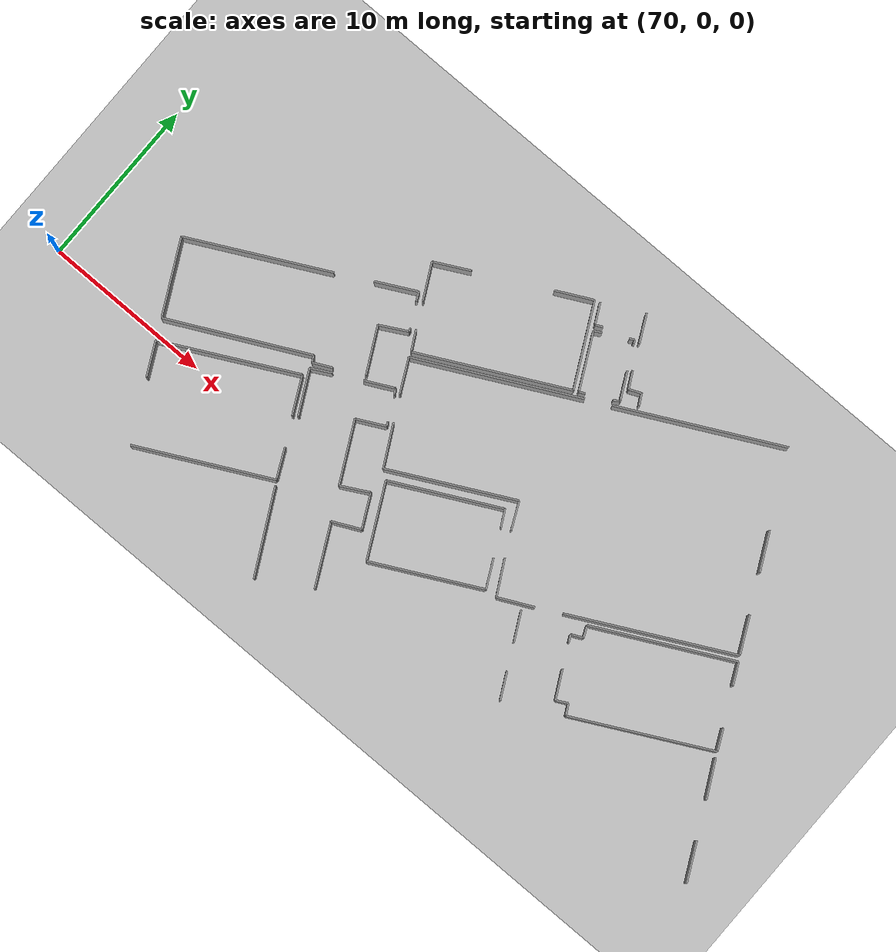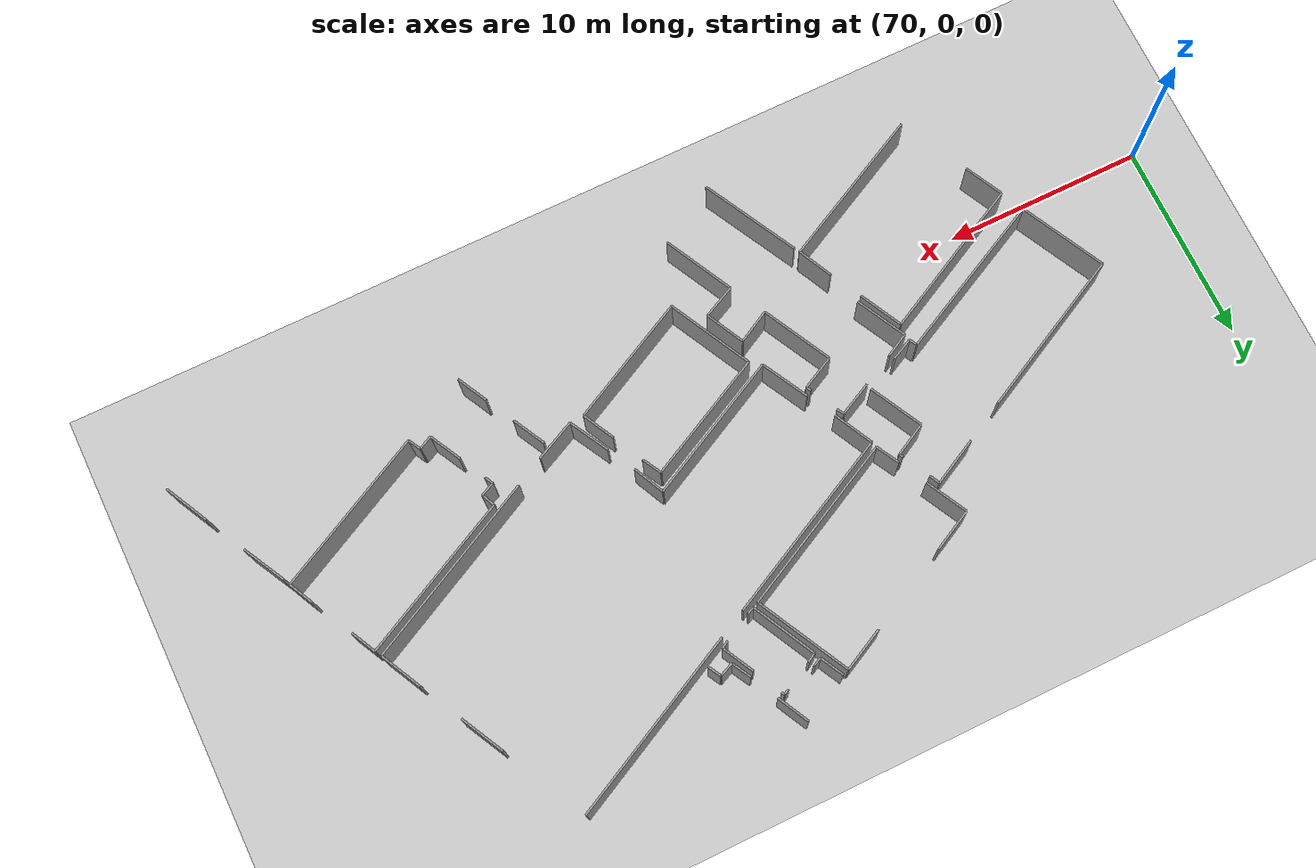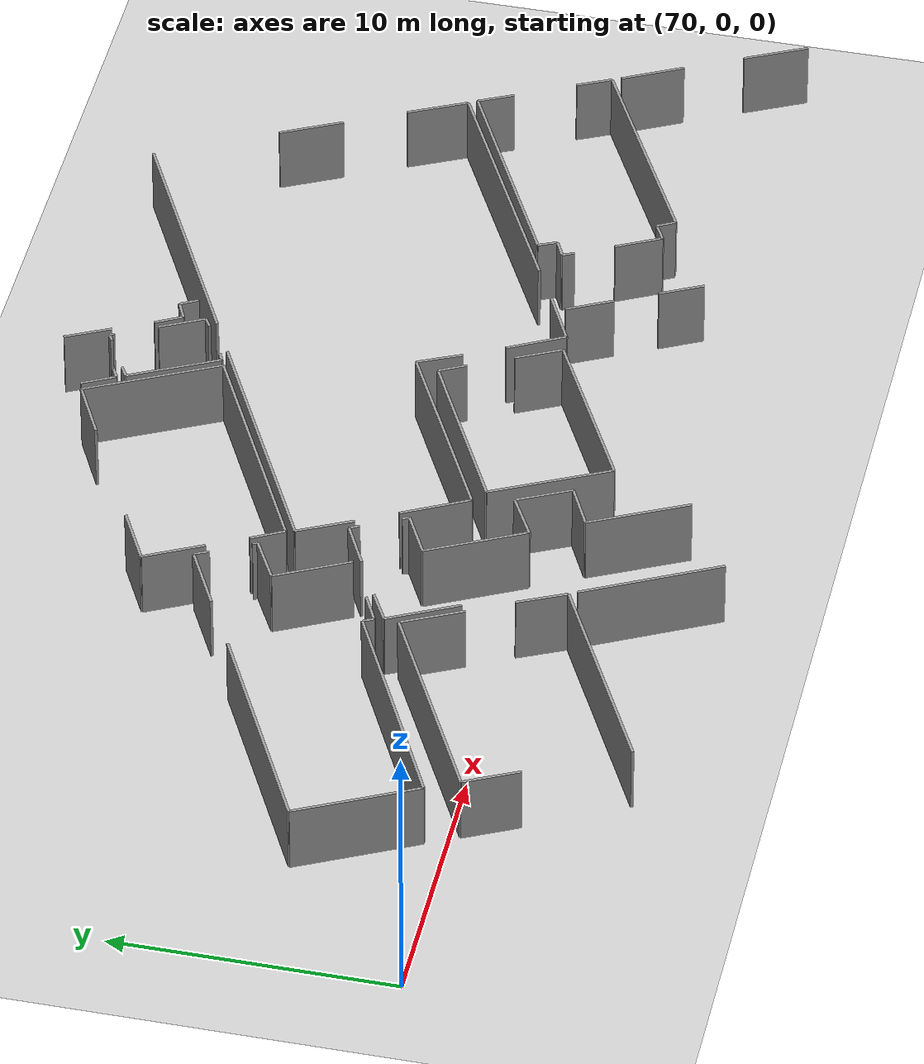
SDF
<sdf version="1.6">
 <world name="default">
  <model name="ground_plane">
   <static>1</static>
   <link name="link">
    <collision name="collision">
     <geometry><plane><normal>0 0 1</normal><size>100 100</size></plane></geometry>
     <surface><friction><ode><mu>100</mu><mu2>50</mu2></ode></friction></surface>
    </collision>
    <visual name="visual">
     <cast_shadows>0</cast_shadows>
     <geometry><plane><normal>0 0 1</normal><size>100 100</size></plane></geometry>
     <material>
      <script><uri>file://media/materials/scripts/gazebo.material</uri><name>Gazebo/Grey</name></script>
     </material>
    </visual>
   </link>
  </model>
  <model name="0510045922_A-40">
   <static>1</static>
   <link name="Wall_787">
    <collision name="Wall_787_Collision">
     <geometry><box><size>0.702674339037 0.1 2.5</size></box></geometry>
     <pose>0.351337169518 0 1.25 0 0 0</pose>
    </collision>
    <visual name="Wall_787_Visual">
     <pose>0.351337169518 0 1.25 0 0 0</pose>
     <geometry><box><size>0.702674339037 0.1 2.5</size></box></geometry>
     <material>
      <script><uri>file://media/materials/scripts/gazebo.material</uri><name>Gazebo/Grey</name></script>
      <ambient>1 1 1 1</ambient>
     </material>
    </visual>
    <pose>234.083802504 -87.1699561543 0 0 0 2.06858411328</pose>
   </link>
   <link name="Wall_788">
    <collision name="Wall_788_Collision">
     <geometry><box><size>0.744508470531 0.1 2.5</size></box></geometry>
     <pose>0.372254235266 0 1.25 0 0 0</pose>
    </collision>
    <visual name="Wall_788_Visual">
     <pose>0.372254235266 0 1.25 0 0 0</pose>
     <geometry><box><size>0.744508470531 0.1 2.5</size></box></geometry>
     <material>
      <script><uri>file://media/materials/scripts/gazebo.material</uri><name>Gazebo/Grey</name></script>
      <ambient>1 1 1 1</ambient>
     </material>
    </visual>
    <pose>233.748287475 -86.5525576666 0 0 0 -2.7262108011</pose>
   </link>
   <link name="Wall_789">
    <collision name="Wall_789_Collision">
     <geometry><box><size>1.05854612528 0.1 2.5</size></box></geometry>
     <pose>0.52927306264 0 1.25 0 0 0</pose>
    </collision>
    <visual name="Wall_789_Visual">
     <pose>0.52927306264 0 1.25 0 0 0</pose>
     <geometry><box><size>1.05854612528 0.1 2.5</size></box></geometry>
     <material>
      <script><uri>file://media/materials/scripts/gazebo.material</uri><name>Gazebo/Grey</name></script>
      <ambient>1 1 1 1</ambient>
     </material>
    </visual>
    <pose>233.067090297 -86.8529961238 0 0 0 2.06816919032</pose>
   </link>
   <link name="Wall_790">
    <collision name="Wall_790_Collision">
     <geometry><box><size>1.72203530952 0.1 2.5</size></box></geometry>
     <pose>0.861017654759 0 1.25 0 0 0</pose>
    </collision>
    <visual name="Wall_790_Visual">
     <pose>0.861017654759 0 1.25 0 0 0</pose>
     <geometry><box><size>1.72203530952 0.1 2.5</size></box></geometry>
     <material>
      <script><uri>file://media/materials/scripts/gazebo.material</uri><name>Gazebo/Grey</name></script>
      <ambient>1 1 1 1</ambient>
     </material>
    </visual>
    <pose>231.89253352 -84.5549723581 0 0 0 2.03926269842</pose>
   </link>
   <link name="Wall_794">
    <collision name="Wall_794_Collision">
     <geometry><box><size>0.455379895638 0.1 2.5</size></box></geometry>
     <pose>0.227689947819 0 1.25 0 0 0</pose>
    </collision>
    <visual name="Wall_794_Visual">
     <pose>0.227689947819 0 1.25 0 0 0</pose>
     <geometry><box><size>0.455379895638 0.1 2.5</size></box></geometry>
     <material>
      <script><uri>file://media/materials/scripts/gazebo.material</uri><name>Gazebo/Grey</name></script>
      <ambient>1 1 1 1</ambient>
     </material>
    </visual>
    <pose>229.790481032 -85.1423778357 0 0 0 -2.67120525648</pose>
   </link>
   <link name="Wall_795">
    <collision name="Wall_795_Collision">
     <geometry><box><size>1.28089379356 0.1 2.5</size></box></geometry>
     <pose>0.640446896781 0 1.25 0 0 0</pose>
    </collision>
    <visual name="Wall_795_Visual">
     <pose>0.640446896781 0 1.25 0 0 0</pose>
     <geometry><box><size>1.28089379356 0.1 2.5</size></box></geometry>
     <material>
      <script><uri>file://media/materials/scripts/gazebo.material</uri><name>Gazebo/Grey</name></script>
      <ambient>1 1 1 1</ambient>
     </material>
    </visual>
    <pose>229.384558683 -85.3487704137 0 0 0 2.04988603832</pose>
   </link>
   <link name="Wall_796">
    <collision name="Wall_796_Collision">
     <geometry><box><size>3.43554262867 0.1 2.5</size></box></geometry>
     <pose>1.71777131433 0 1.25 0 0 0</pose>
    </collision>
    <visual name="Wall_796_Visual">
     <pose>1.71777131433 0 1.25 0 0 0</pose>
     <geometry><box><size>3.43554262867 0.1 2.5</size></box></geometry>
     <material>
      <script><uri>file://media/materials/scripts/gazebo.material</uri><name>Gazebo/Grey</name></script>
      <ambient>1 1 1 1</ambient>
     </material>
    </visual>
    <pose>231.07585944 -88.7140878185 0 0 0 2.03910922306</pose>
   </link>
   <link name="Wall_797">
    <collision name="Wall_797_Collision">
     <geometry><box><size>0.488071964236 0.1 2.5</size></box></geometry>
     <pose>0.244035982118 0 1.25 0 0 0</pose>
    </collision>
    <visual name="Wall_797_Visual">
     <pose>0.244035982118 0 1.25 0 0 0</pose>
     <geometry><box><size>0.488071964236 0.1 2.5</size></box></geometry>
     <material>
      <script><uri>file://media/materials/scripts/gazebo.material</uri><name>Gazebo/Grey</name></script>
      <ambient>1 1 1 1</ambient>
     </material>
    </visual>
    <pose>229.525119146 -85.6484463367 0 0 0 0.515141226415</pose>
   </link>
   <link name="Wall_798">
    <collision name="Wall_798_Collision">
     <geometry><box><size>0.283112021477 0.1 2.5</size></box></geometry>
     <pose>0.141556010739 0 1.25 0 0 0</pose>
    </collision>
    <visual name="Wall_798_Visual">
     <pose>0.141556010739 0 1.25 0 0 0</pose>
     <geometry><box><size>0.283112021477 0.1 2.5</size></box></geometry>
     <material>
      <script><uri>file://media/materials/scripts/gazebo.material</uri><name>Gazebo/Grey</name></script>
      <ambient>1 1 1 1</ambient>
     </material>
    </visual>
    <pose>231.298265235 -84.7041748745 0 0 0 0.485732371197</pose>
   </link>
   <link name="Wall_799">
    <collision name="Wall_799_Collision">
     <geometry><box><size>0.16725611109 0.1 2.5</size></box></geometry>
     <pose>0.0836280555448 0 1.25 0 0 0</pose>
    </collision>
    <visual name="Wall_799_Visual">
     <pose>0.0836280555448 0 1.25 0 0 0</pose>
     <geometry><box><size>0.16725611109 0.1 2.5</size></box></geometry>
     <material>
      <script><uri>file://media/materials/scripts/gazebo.material</uri><name>Gazebo/Grey</name></script>
      <ambient>1 1 1 1</ambient>
     </material>
    </visual>
    <pose>231.548630616 -84.5720022876 0 0 0 -0.936413506319</pose>
   </link>
   <link name="Wall_800">
    <collision name="Wall_800_Collision">
     <geometry><box><size>1.72026101765 0.1 2.5</size></box></geometry>
     <pose>0.860130508825 0 1.25 0 0 0</pose>
    </collision>
    <visual name="Wall_800_Visual">
     <pose>0.860130508825 0 1.25 0 0 0</pose>
     <geometry><box><size>1.72026101765 0.1 2.5</size></box></geometry>
     <material>
      <script><uri>file://media/materials/scripts/gazebo.material</uri><name>Gazebo/Grey</name></script>
      <ambient>1 1 1 1</ambient>
     </material>
    </visual>
    <pose>232.350562369 -86.1186757324 0 0 0 -1.09849235568</pose>
   </link>
   <link name="Wall_801">
    <collision name="Wall_801_Collision">
     <geometry><box><size>0.405953622283 0.1 2.5</size></box></geometry>
     <pose>0.202976811141 0 1.25 0 0 0</pose>
    </collision>
    <visual name="Wall_801_Visual">
     <pose>0.202976811141 0 1.25 0 0 0</pose>
     <geometry><box><size>0.405953622283 0.1 2.5</size></box></geometry>
     <material>
      <script><uri>file://media/materials/scripts/gazebo.material</uri><name>Gazebo/Grey</name></script>
      <ambient>1 1 1 1</ambient>
     </material>
    </visual>
    <pose>233.13317659 -87.6506068501 0 0 0 -2.58850201021</pose>
   </link>
   <link name="Wall_802">
    <collision name="Wall_802_Collision">
     <geometry><box><size>0.370799346561 0.1 2.5</size></box></geometry>
     <pose>0.185399673281 0 1.25 0 0 0</pose>
    </collision>
    <visual name="Wall_802_Visual">
     <pose>0.185399673281 0 1.25 0 0 0</pose>
     <geometry><box><size>0.370799346561 0.1 2.5</size></box></geometry>
     <material>
      <script><uri>file://media/materials/scripts/gazebo.material</uri><name>Gazebo/Grey</name></script>
      <ambient>1 1 1 1</ambient>
     </material>
    </visual>
    <pose>231.416966385 -88.5686979729 0 0 0 -2.73868106274</pose>
   </link>
   <link name="Wall_803">
    <collision name="Wall_803_Collision">
     <geometry><box><size>2.2335447484 0.1 2.5</size></box></geometry>
     <pose>1.1167723742 0 1.25 0 0 0</pose>
    </collision>
    <visual name="Wall_803_Visual">
     <pose>1.1167723742 0 1.25 0 0 0</pose>
     <geometry><box><size>2.2335447484 0.1 2.5</size></box></geometry>
     <material>
      <script><uri>file://media/materials/scripts/gazebo.material</uri><name>Gazebo/Grey</name></script>
      <ambient>1 1 1 1</ambient>
     </material>
    </visual>
    <pose>220.331499015 -88.475668806 0 0 0 0.478101735422</pose>
   </link>
   <link name="Wall_804">
    <collision name="Wall_804_Collision">
     <geometry><box><size>2.28574592998 0.1 2.5</size></box></geometry>
     <pose>1.14287296499 0 1.25 0 0 0</pose>
    </collision>
    <visual name="Wall_804_Visual">
     <pose>1.14287296499 0 1.25 0 0 0</pose>
     <geometry><box><size>2.28574592998 0.1 2.5</size></box></geometry>
     <material>
      <script><uri>file://media/materials/scripts/gazebo.material</uri><name>Gazebo/Grey</name></script>
      <ambient>1 1 1 1</ambient>
     </material>
    </visual>
    <pose>226.447277118 -85.3528372625 0 0 0 0.468919093889</pose>
   </link>
   <link name="Wall_805">
    <collision name="Wall_805_Collision">
     <geometry><box><size>5.08370079239 0.1 2.5</size></box></geometry>
     <pose>2.54185039619 0 1.25 0 0 0</pose>
    </collision>
    <visual name="Wall_805_Visual">
     <pose>2.54185039619 0 1.25 0 0 0</pose>
     <geometry><box><size>5.08370079239 0.1 2.5</size></box></geometry>
     <material>
      <script><uri>file://media/materials/scripts/gazebo.material</uri><name>Gazebo/Grey</name></script>
      <ambient>1 1 1 1</ambient>
     </material>
    </visual>
    <pose>228.486293449 -84.3198576603 0 0 0 -1.09871887343</pose>
   </link>
   <link name="Wall_806">
    <collision name="Wall_806_Collision">
     <geometry><box><size>9.12116291079 0.1 2.5</size></box></geometry>
     <pose>4.56058145539 0 1.25 0 0 0</pose>
    </collision>
    <visual name="Wall_806_Visual">
     <pose>4.56058145539 0 1.25 0 0 0</pose>
     <geometry><box><size>9.12116291079 0.1 2.5</size></box></geometry>
     <material>
      <script><uri>file://media/materials/scripts/gazebo.material</uri><name>Gazebo/Grey</name></script>
      <ambient>1 1 1 1</ambient>
     </material>
    </visual>
    <pose>230.798042829 -88.8475312957 0 0 0 -2.67061706848</pose>
   </link>
   <link name="Wall_807">
    <collision name="Wall_807_Collision">
     <geometry><box><size>1.27514228015 0.1 2.5</size></box></geometry>
     <pose>0.637571140075 0 1.25 0 0 0</pose>
    </collision>
    <visual name="Wall_807_Visual">
     <pose>0.637571140075 0 1.25 0 0 0</pose>
     <geometry><box><size>1.27514228015 0.1 2.5</size></box></geometry>
     <material>
      <script><uri>file://media/materials/scripts/gazebo.material</uri><name>Gazebo/Grey</name></script>
      <ambient>1 1 1 1</ambient>
     </material>
    </visual>
    <pose>222.669937091 -92.9863125119 0 0 0 2.06645226519</pose>
   </link>
   <link name="Wall_808">
    <collision name="Wall_808_Collision">
     <geometry><box><size>2.25785678041 0.1 2.5</size></box></geometry>
     <pose>1.12892839021 0 1.25 0 0 0</pose>
    </collision>
    <visual name="Wall_808_Visual">
     <pose>1.12892839021 0 1.25 0 0 0</pose>
     <geometry><box><size>2.25785678041 0.1 2.5</size></box></geometry>
     <material>
      <script><uri>file://media/materials/scripts/gazebo.material</uri><name>Gazebo/Grey</name></script>
      <ambient>1 1 1 1</ambient>
     </material>
    </visual>
    <pose>221.369308 -90.4808794561 0 0 0 2.04838996277</pose>
   </link>
   <link name="Wall_809">
    <collision name="Wall_809_Collision">
     <geometry><box><size>6.69150289849 0.1 2.5</size></box></geometry>
     <pose>3.34575144925 0 1.25 0 0 0</pose>
    </collision>
    <visual name="Wall_809_Visual">
     <pose>3.34575144925 0 1.25 0 0 0</pose>
     <geometry><box><size>6.69150289849 0.1 2.5</size></box></geometry>
     <material>
      <script><uri>file://media/materials/scripts/gazebo.material</uri><name>Gazebo/Grey</name></script>
      <ambient>1 1 1 1</ambient>
     </material>
    </visual>
    <pose>226.17174811 -99.2439219673 0 0 0 0.468947732646</pose>
   </link>
   <link name="Wall_810">
    <collision name="Wall_810_Collision">
     <geometry><box><size>1.04712513145 0.1 2.5</size></box></geometry>
     <pose>0.523562565726 0 1.25 0 0 0</pose>
    </collision>
    <visual name="Wall_810_Visual">
     <pose>0.523562565726 0 1.25 0 0 0</pose>
     <geometry><box><size>1.04712513145 0.1 2.5</size></box></geometry>
     <material>
      <script><uri>file://media/materials/scripts/gazebo.material</uri><name>Gazebo/Grey</name></script>
      <ambient>1 1 1 1</ambient>
     </material>
    </visual>
    <pose>232.140865476 -96.2197115079 0 0 0 -1.08239538618</pose>
   </link>
   <link name="Wall_811">
    <collision name="Wall_811_Collision">
     <geometry><box><size>1.75693164649 0.1 2.5</size></box></geometry>
     <pose>0.878465823244 0 1.25 0 0 0</pose>
    </collision>
    <visual name="Wall_811_Visual">
     <pose>0.878465823244 0 1.25 0 0 0</pose>
     <geometry><box><size>1.75693164649 0.1 2.5</size></box></geometry>
     <material>
      <script><uri>file://media/materials/scripts/gazebo.material</uri><name>Gazebo/Grey</name></script>
      <ambient>1 1 1 1</ambient>
     </material>
    </visual>
    <pose>233.402605325 -98.6783758022 0 0 0 -1.1024903664</pose>
   </link>
   <link name="Wall_812">
    <collision name="Wall_812_Collision">
     <geometry><box><size>6.70381855662 0.1 2.5</size></box></geometry>
     <pose>3.35190927831 0 1.25 0 0 0</pose>
    </collision>
    <visual name="Wall_812_Visual">
     <pose>3.35190927831 0 1.25 0 0 0</pose>
     <geometry><box><size>6.70381855662 0.1 2.5</size></box></geometry>
     <material>
      <script><uri>file://media/materials/scripts/gazebo.material</uri><name>Gazebo/Grey</name></script>
      <ambient>1 1 1 1</ambient>
     </material>
    </visual>
    <pose>234.195640846 -100.246146025 0 0 0 -2.66936505742</pose>
   </link>
   <link name="Wall_813">
    <collision name="Wall_813_Collision">
     <geometry><box><size>4.54239718096 0.1 2.5</size></box></geometry>
     <pose>2.27119859048 0 1.25 0 0 0</pose>
    </collision>
    <visual name="Wall_813_Visual">
     <pose>2.27119859048 0 1.25 0 0 0</pose>
     <geometry><box><size>4.54239718096 0.1 2.5</size></box></geometry>
     <material>
      <script><uri>file://media/materials/scripts/gazebo.material</uri><name>Gazebo/Grey</name></script>
      <ambient>1 1 1 1</ambient>
     </material>
    </visual>
    <pose>228.225506767 -103.295520112 0 0 0 2.03994938568</pose>
   </link>
   <link name="Wall_814">
    <collision name="Wall_814_Collision">
     <geometry><box><size>9.89118729585 0.1 2.5</size></box></geometry>
     <pose>4.94559364793 0 1.25 0 0 0</pose>
    </collision>
    <visual name="Wall_814_Visual">
     <pose>4.94559364793 0 1.25 0 0 0</pose>
     <geometry><box><size>9.89118729585 0.1 2.5</size></box></geometry>
     <material>
      <script><uri>file://media/materials/scripts/gazebo.material</uri><name>Gazebo/Grey</name></script>
      <ambient>1 1 1 1</ambient>
     </material>
    </visual>
    <pose>222.755340916 -93.286242613 0 0 0 0.470841812167</pose>
   </link>
   <link name="Wall_815">
    <collision name="Wall_815_Collision">
     <geometry><box><size>9.91545709278 0.1 2.5</size></box></geometry>
     <pose>4.95772854639 0 1.25 0 0 0</pose>
    </collision>
    <visual name="Wall_815_Visual">
     <pose>4.95772854639 0 1.25 0 0 0</pose>
     <geometry><box><size>9.91545709278 0.1 2.5</size></box></geometry>
     <material>
      <script><uri>file://media/materials/scripts/gazebo.material</uri><name>Gazebo/Grey</name></script>
      <ambient>1 1 1 1</ambient>
     </material>
    </visual>
    <pose>232.952710173 -88.1032979602 0 0 0 0.469998768058</pose>
   </link>
   <link name="Wall_817">
    <collision name="Wall_817_Collision">
     <geometry><box><size>2.38762344668 0.1 2.5</size></box></geometry>
     <pose>1.19381172334 0 1.25 0 0 0</pose>
    </collision>
    <visual name="Wall_817_Visual">
     <pose>1.19381172334 0 1.25 0 0 0</pose>
     <geometry><box><size>2.38762344668 0.1 2.5</size></box></geometry>
     <material>
      <script><uri>file://media/materials/scripts/gazebo.material</uri><name>Gazebo/Grey</name></script>
      <ambient>1 1 1 1</ambient>
     </material>
    </visual>
    <pose>243.915409544 -87.7515155366 0 0 0 -1.10010255751</pose>
   </link>
   <link name="Wall_818">
    <collision name="Wall_818_Collision">
     <geometry><box><size>2.28548904373 0.1 2.5</size></box></geometry>
     <pose>1.14274452186 0 1.25 0 0 0</pose>
    </collision>
    <visual name="Wall_818_Visual">
     <pose>1.14274452186 0 1.25 0 0 0</pose>
     <geometry><box><size>2.28548904373 0.1 2.5</size></box></geometry>
     <material>
      <script><uri>file://media/materials/scripts/gazebo.material</uri><name>Gazebo/Grey</name></script>
      <ambient>1 1 1 1</ambient>
     </material>
    </visual>
    <pose>246.060672301 -91.9810383173 0 0 0 -1.10854133601</pose>
   </link>
   <link name="Wall_819">
    <collision name="Wall_819_Collision">
     <geometry><box><size>9.89638124721 0.1 2.5</size></box></geometry>
     <pose>4.94819062361 0 1.25 0 0 0</pose>
    </collision>
    <visual name="Wall_819_Visual">
     <pose>4.94819062361 0 1.25 0 0 0</pose>
     <geometry><box><size>9.89638124721 0.1 2.5</size></box></geometry>
     <material>
      <script><uri>file://media/materials/scripts/gazebo.material</uri><name>Gazebo/Grey</name></script>
      <ambient>1 1 1 1</ambient>
     </material>
    </visual>
    <pose>247.079926288 -94.0266632776 0 0 0 -2.66972082789</pose>
   </link>
   <link name="Wall_820">
    <collision name="Wall_820_Collision">
     <geometry><box><size>2.17733418956 0.1 2.5</size></box></geometry>
     <pose>1.08866709478 0 1.25 0 0 0</pose>
    </collision>
    <visual name="Wall_820_Visual">
     <pose>1.08866709478 0 1.25 0 0 0</pose>
     <geometry><box><size>2.17733418956 0.1 2.5</size></box></geometry>
     <material>
      <script><uri>file://media/materials/scripts/gazebo.material</uri><name>Gazebo/Grey</name></script>
      <ambient>1 1 1 1</ambient>
     </material>
    </visual>
    <pose>236.86705217 -99.257139226 0 0 0 -2.69068387408</pose>
   </link>
   <link name="Wall_821">
    <collision name="Wall_821_Collision">
     <geometry><box><size>2.1959600944 0.1 2.5</size></box></geometry>
     <pose>1.0979800472 0 1.25 0 0 0</pose>
    </collision>
    <visual name="Wall_821_Visual">
     <pose>1.0979800472 0 1.25 0 0 0</pose>
     <geometry><box><size>2.1959600944 0.1 2.5</size></box></geometry>
     <material>
      <script><uri>file://media/materials/scripts/gazebo.material</uri><name>Gazebo/Grey</name></script>
      <ambient>1 1 1 1</ambient>
     </material>
    </visual>
    <pose>234.907339391 -100.205985893 0 0 0 2.06395375106</pose>
   </link>
   <link name="Wall_822">
    <collision name="Wall_822_Collision">
     <geometry><box><size>1.67993368068 0.1 2.5</size></box></geometry>
     <pose>0.839966840342 0 1.25 0 0 0</pose>
    </collision>
    <visual name="Wall_822_Visual">
     <pose>0.839966840342 0 1.25 0 0 0</pose>
     <geometry><box><size>1.67993368068 0.1 2.5</size></box></geometry>
     <material>
      <script><uri>file://media/materials/scripts/gazebo.material</uri><name>Gazebo/Grey</name></script>
      <ambient>1 1 1 1</ambient>
     </material>
    </visual>
    <pose>233.158594395 -96.893283345 0 0 0 2.0117743851</pose>
   </link>
   <link name="Wall_823">
    <collision name="Wall_823_Collision">
     <geometry><box><size>7.63311057916 0.1 2.5</size></box></geometry>
     <pose>3.81655528958 0 1.25 0 0 0</pose>
    </collision>
    <visual name="Wall_823_Visual">
     <pose>3.81655528958 0 1.25 0 0 0</pose>
     <geometry><box><size>7.63311057916 0.1 2.5</size></box></geometry>
     <material>
      <script><uri>file://media/materials/scripts/gazebo.material</uri><name>Gazebo/Grey</name></script>
      <ambient>1 1 1 1</ambient>
     </material>
    </visual>
    <pose>232.441558111 -95.3740611298 0 0 0 -2.66951610261</pose>
   </link>
   <link name="Wall_824">
    <collision name="Wall_824_Collision">
     <geometry><box><size>2.57103164901 0.1 2.5</size></box></geometry>
     <pose>1.28551582451 0 1.25 0 0 0</pose>
    </collision>
    <visual name="Wall_824_Visual">
     <pose>1.28551582451 0 1.25 0 0 0</pose>
     <geometry><box><size>2.57103164901 0.1 2.5</size></box></geometry>
     <material>
      <script><uri>file://media/materials/scripts/gazebo.material</uri><name>Gazebo/Grey</name></script>
      <ambient>1 1 1 1</ambient>
     </material>
    </visual>
    <pose>225.64331194 -98.8451166042 0 0 0 2.05549066618</pose>
   </link>
   <link name="Wall_825">
    <collision name="Wall_825_Collision">
     <geometry><box><size>2.11612398118 0.1 2.5</size></box></geometry>
     <pose>1.05806199059 0 1.25 0 0 0</pose>
    </collision>
    <visual name="Wall_825_Visual">
     <pose>1.05806199059 0 1.25 0 0 0</pose>
     <geometry><box><size>2.11612398118 0.1 2.5</size></box></geometry>
     <material>
      <script><uri>file://media/materials/scripts/gazebo.material</uri><name>Gazebo/Grey</name></script>
      <ambient>1 1 1 1</ambient>
     </material>
    </visual>
    <pose>223.706983542 -95.1763106056 0 0 0 2.03723722462</pose>
   </link>
   <link name="Wall_826">
    <collision name="Wall_826_Collision">
     <geometry><box><size>4.59194956785 0.1 2.5</size></box></geometry>
     <pose>2.29597478393 0 1.25 0 0 0</pose>
    </collision>
    <visual name="Wall_826_Visual">
     <pose>2.29597478393 0 1.25 0 0 0</pose>
     <geometry><box><size>4.59194956785 0.1 2.5</size></box></geometry>
     <material>
      <script><uri>file://media/materials/scripts/gazebo.material</uri><name>Gazebo/Grey</name></script>
      <ambient>1 1 1 1</ambient>
     </material>
    </visual>
    <pose>211.051204169 -100.410090869 0 0 0 2.03956816067</pose>
   </link>
   <link name="Wall_827">
    <collision name="Wall_827_Collision">
     <geometry><box><size>8.59559756146 0.1 2.5</size></box></geometry>
     <pose>4.29779878073 0 1.25 0 0 0</pose>
    </collision>
    <visual name="Wall_827_Visual">
     <pose>4.29779878073 0 1.25 0 0 0</pose>
     <geometry><box><size>8.59559756146 0.1 2.5</size></box></geometry>
     <material>
      <script><uri>file://media/materials/scripts/gazebo.material</uri><name>Gazebo/Grey</name></script>
      <ambient>1 1 1 1</ambient>
     </material>
    </visual>
    <pose>208.97660291 -96.313503209 0 0 0 0.471979096445</pose>
   </link>
   <link name="Wall_828">
    <collision name="Wall_828_Collision">
     <geometry><box><size>2.52065626287 0.1 2.5</size></box></geometry>
     <pose>1.26032813144 0 1.25 0 0 0</pose>
    </collision>
    <visual name="Wall_828_Visual">
     <pose>1.26032813144 0 1.25 0 0 0</pose>
     <geometry><box><size>2.52065626287 0.1 2.5</size></box></geometry>
     <material>
      <script><uri>file://media/materials/scripts/gazebo.material</uri><name>Gazebo/Grey</name></script>
      <ambient>1 1 1 1</ambient>
     </material>
    </visual>
    <pose>218.610459427 -91.3506767491 0 0 0 0.47654546408</pose>
   </link>
   <link name="Wall_829">
    <collision name="Wall_829_Collision">
     <geometry><box><size>0.550262842912 0.1 2.5</size></box></geometry>
     <pose>0.275131421456 0 1.25 0 0 0</pose>
    </collision>
    <visual name="Wall_829_Visual">
     <pose>0.275131421456 0 1.25 0 0 0</pose>
     <geometry><box><size>0.550262842912 0.1 2.5</size></box></geometry>
     <material>
      <script><uri>file://media/materials/scripts/gazebo.material</uri><name>Gazebo/Grey</name></script>
      <ambient>1 1 1 1</ambient>
     </material>
    </visual>
    <pose>220.850276419 -90.1944207918 0 0 0 -1.13442031809</pose>
   </link>
   <link name="Wall_830">
    <collision name="Wall_830_Collision">
     <geometry><box><size>0.197781558973 0.1 2.5</size></box></geometry>
     <pose>0.0988907794863 0 1.25 0 0 0</pose>
    </collision>
    <visual name="Wall_830_Visual">
     <pose>0.0988907794863 0 1.25 0 0 0</pose>
     <geometry><box><size>0.197781558973 0.1 2.5</size></box></geometry>
     <material>
      <script><uri>file://media/materials/scripts/gazebo.material</uri><name>Gazebo/Grey</name></script>
      <ambient>1 1 1 1</ambient>
     </material>
    </visual>
    <pose>221.789972676 -92.0224693398 0 0 0 -1.13991444538</pose>
   </link>
   <link name="Wall_831">
    <collision name="Wall_831_Collision">
     <geometry><box><size>1.76415413026 0.1 2.5</size></box></geometry>
     <pose>0.882077065132 0 1.25 0 0 0</pose>
    </collision>
    <visual name="Wall_831_Visual">
     <pose>0.882077065132 0 1.25 0 0 0</pose>
     <geometry><box><size>1.76415413026 0.1 2.5</size></box></geometry>
     <material>
      <script><uri>file://media/materials/scripts/gazebo.material</uri><name>Gazebo/Grey</name></script>
      <ambient>1 1 1 1</ambient>
     </material>
    </visual>
    <pose>221.872580543 -92.2021732223 0 0 0 -2.64643149937</pose>
   </link>
   <link name="Wall_832">
    <collision name="Wall_832_Collision">
     <geometry><box><size>2.86427566955 0.1 2.5</size></box></geometry>
     <pose>1.43213783478 0 1.25 0 0 0</pose>
    </collision>
    <visual name="Wall_832_Visual">
     <pose>1.43213783478 0 1.25 0 0 0</pose>
     <geometry><box><size>2.86427566955 0.1 2.5</size></box></geometry>
     <material>
      <script><uri>file://media/materials/scripts/gazebo.material</uri><name>Gazebo/Grey</name></script>
      <ambient>1 1 1 1</ambient>
     </material>
    </visual>
    <pose>220.320315181 -93.0404524369 0 0 0 -1.09536167837</pose>
   </link>
   <link name="Wall_833">
    <collision name="Wall_833_Collision">
     <geometry><box><size>1.16218891565 0.1 2.5</size></box></geometry>
     <pose>0.581094457823 0 1.25 0 0 0</pose>
    </collision>
    <visual name="Wall_833_Visual">
     <pose>0.581094457823 0 1.25 0 0 0</pose>
     <geometry><box><size>1.16218891565 0.1 2.5</size></box></geometry>
     <material>
      <script><uri>file://media/materials/scripts/gazebo.material</uri><name>Gazebo/Grey</name></script>
      <ambient>1 1 1 1</ambient>
     </material>
    </visual>
    <pose>219.961924128 -96.4250873737 0 0 0 -2.68156396463</pose>
   </link>
   <link name="Wall_834">
    <collision name="Wall_834_Collision">
     <geometry><box><size>0.410444038879 0.1 2.5</size></box></geometry>
     <pose>0.20522201944 0 1.25 0 0 0</pose>
    </collision>
    <visual name="Wall_834_Visual">
     <pose>0.20522201944 0 1.25 0 0 0</pose>
     <geometry><box><size>0.410444038879 0.1 2.5</size></box></geometry>
     <material>
      <script><uri>file://media/materials/scripts/gazebo.material</uri><name>Gazebo/Grey</name></script>
      <ambient>1 1 1 1</ambient>
     </material>
    </visual>
    <pose>218.92055665 -96.9410688187 0 0 0 2.05521657073</pose>
   </link>
   <link name="Wall_835">
    <collision name="Wall_835_Collision">
     <geometry><box><size>8.58143346308 0.1 2.5</size></box></geometry>
     <pose>4.29071673154 0 1.25 0 0 0</pose>
    </collision>
    <visual name="Wall_835_Visual">
     <pose>4.29071673154 0 1.25 0 0 0</pose>
     <geometry><box><size>8.58143346308 0.1 2.5</size></box></geometry>
     <material>
      <script><uri>file://media/materials/scripts/gazebo.material</uri><name>Gazebo/Grey</name></script>
      <ambient>1 1 1 1</ambient>
     </material>
    </visual>
    <pose>218.729414755 -96.5778483828 0 0 0 -2.67866034257</pose>
   </link>
   <link name="Wall_837">
    <collision name="Wall_837_Collision">
     <geometry><box><size>1.78347777056 0.1 2.5</size></box></geometry>
     <pose>0.891738885279 0 1.25 0 0 0</pose>
    </collision>
    <visual name="Wall_837_Visual">
     <pose>0.891738885279 0 1.25 0 0 0</pose>
     <geometry><box><size>1.78347777056 0.1 2.5</size></box></geometry>
     <material>
      <script><uri>file://media/materials/scripts/gazebo.material</uri><name>Gazebo/Grey</name></script>
      <ambient>1 1 1 1</ambient>
     </material>
    </visual>
    <pose>236.391739213 -99.8539492915 0 0 0 -1.09242515154</pose>
   </link>
   <link name="Wall_838">
    <collision name="Wall_838_Collision">
     <geometry><box><size>1.67584229257 0.1 2.5</size></box></geometry>
     <pose>0.837921146287 0 1.25 0 0 0</pose>
    </collision>
    <visual name="Wall_838_Visual">
     <pose>0.837921146287 0 1.25 0 0 0</pose>
     <geometry><box><size>1.67584229257 0.1 2.5</size></box></geometry>
     <material>
      <script><uri>file://media/materials/scripts/gazebo.material</uri><name>Gazebo/Grey</name></script>
      <ambient>1 1 1 1</ambient>
     </material>
    </visual>
    <pose>237.94985067 -102.888581051 0 0 0 -1.09670275398</pose>
   </link>
   <link name="Wall_842">
    <collision name="Wall_842_Collision">
     <geometry><box><size>8.49953954372 0.1 2.5</size></box></geometry>
     <pose>4.24976977186 0 1.25 0 0 0</pose>
    </collision>
    <visual name="Wall_842_Visual">
     <pose>4.24976977186 0 1.25 0 0 0</pose>
     <geometry><box><size>8.49953954372 0.1 2.5</size></box></geometry>
     <material>
      <script><uri>file://media/materials/scripts/gazebo.material</uri><name>Gazebo/Grey</name></script>
      <ambient>1 1 1 1</ambient>
     </material>
    </visual>
    <pose>239.670636081 -98.1634110695 0 0 0 0.467579541876</pose>
   </link>
   <link name="Wall_843">
    <collision name="Wall_843_Collision">
     <geometry><box><size>1.35565165117 0.1 2.5</size></box></geometry>
     <pose>0.677825825583 0 1.25 0 0 0</pose>
    </collision>
    <visual name="Wall_843_Visual">
     <pose>0.677825825583 0 1.25 0 0 0</pose>
     <geometry><box><size>1.35565165117 0.1 2.5</size></box></geometry>
     <material>
      <script><uri>file://media/materials/scripts/gazebo.material</uri><name>Gazebo/Grey</name></script>
      <ambient>1 1 1 1</ambient>
     </material>
    </visual>
    <pose>247.257850925 -94.3324394739 0 0 0 -1.1082387727</pose>
   </link>
   <link name="Wall_844">
    <collision name="Wall_844_Collision">
     <geometry><box><size>1.32772697793 0.1 2.5</size></box></geometry>
     <pose>0.663863488965 0 1.25 0 0 0</pose>
    </collision>
    <visual name="Wall_844_Visual">
     <pose>0.663863488965 0 1.25 0 0 0</pose>
     <geometry><box><size>1.32772697793 0.1 2.5</size></box></geometry>
     <material>
      <script><uri>file://media/materials/scripts/gazebo.material</uri><name>Gazebo/Grey</name></script>
      <ambient>1 1 1 1</ambient>
     </material>
    </visual>
    <pose>248.940509627 -97.6286204486 0 0 0 -1.11485404475</pose>
   </link>
   <link name="Wall_845">
    <collision name="Wall_845_Collision">
     <geometry><box><size>8.48133803428 0.1 2.5</size></box></geometry>
     <pose>4.24066901714 0 1.25 0 0 0</pose>
    </collision>
    <visual name="Wall_845_Visual">
     <pose>4.24066901714 0 1.25 0 0 0</pose>
     <geometry><box><size>8.48133803428 0.1 2.5</size></box></geometry>
     <material>
      <script><uri>file://media/materials/scripts/gazebo.material</uri><name>Gazebo/Grey</name></script>
      <ambient>1 1 1 1</ambient>
     </material>
    </visual>
    <pose>249.525119146 -98.8207155112 0 0 0 -2.66832183779</pose>
   </link>
   <link name="Wall_846">
    <collision name="Wall_846_Collision">
     <geometry><box><size>0.696324286835 0.1 2.5</size></box></geometry>
     <pose>0.348162143418 0 1.25 0 0 0</pose>
    </collision>
    <visual name="Wall_846_Visual">
     <pose>0.348162143418 0 1.25 0 0 0</pose>
     <geometry><box><size>0.696324286835 0.1 2.5</size></box></geometry>
     <material>
      <script><uri>file://media/materials/scripts/gazebo.material</uri><name>Gazebo/Grey</name></script>
      <ambient>1 1 1 1</ambient>
     </material>
    </visual>
    <pose>241.97603101 -102.6865095 0 0 0 2.06938560528</pose>
   </link>
   <link name="Wall_847">
    <collision name="Wall_847_Collision">
     <geometry><box><size>0.728680199258 0.1 2.5</size></box></geometry>
     <pose>0.364340099629 0 1.25 0 0 0</pose>
    </collision>
    <visual name="Wall_847_Visual">
     <pose>0.364340099629 0 1.25 0 0 0</pose>
     <geometry><box><size>0.728680199258 0.1 2.5</size></box></geometry>
     <material>
      <script><uri>file://media/materials/scripts/gazebo.material</uri><name>Gazebo/Grey</name></script>
      <ambient>1 1 1 1</ambient>
     </material>
    </visual>
    <pose>241.643057762 -102.074957107 0 0 0 -2.66702504185</pose>
   </link>
   <link name="Wall_848">
    <collision name="Wall_848_Collision">
     <geometry><box><size>1.75127661292 0.1 2.5</size></box></geometry>
     <pose>0.875638306462 0 1.25 0 0 0</pose>
    </collision>
    <visual name="Wall_848_Visual">
     <pose>0.875638306462 0 1.25 0 0 0</pose>
     <geometry><box><size>1.75127661292 0.1 2.5</size></box></geometry>
     <material>
      <script><uri>file://media/materials/scripts/gazebo.material</uri><name>Gazebo/Grey</name></script>
      <ambient>1 1 1 1</ambient>
     </material>
    </visual>
    <pose>240.99490373 -102.407930355 0 0 0 2.05216475006</pose>
   </link>
   <link name="Wall_849">
    <collision name="Wall_849_Collision">
     <geometry><box><size>0.449458672635 0.1 2.5</size></box></geometry>
     <pose>0.224729336318 0 1.25 0 0 0</pose>
    </collision>
    <visual name="Wall_849_Visual">
     <pose>0.224729336318 0 1.25 0 0 0</pose>
     <geometry><box><size>0.449458672635 0.1 2.5</size></box></geometry>
     <material>
      <script><uri>file://media/materials/scripts/gazebo.material</uri><name>Gazebo/Grey</name></script>
      <ambient>1 1 1 1</ambient>
     </material>
    </visual>
    <pose>239.513045689 -99.527330495 0 0 0 2.03393811894</pose>
   </link>
   <link name="Wall_850">
    <collision name="Wall_850_Collision">
     <geometry><box><size>0.721909564978 0.1 2.5</size></box></geometry>
     <pose>0.360954782489 0 1.25 0 0 0</pose>
    </collision>
    <visual name="Wall_850_Visual">
     <pose>0.360954782489 0 1.25 0 0 0</pose>
     <geometry><box><size>0.721909564978 0.1 2.5</size></box></geometry>
     <material>
      <script><uri>file://media/materials/scripts/gazebo.material</uri><name>Gazebo/Grey</name></script>
      <ambient>1 1 1 1</ambient>
     </material>
    </visual>
    <pose>239.312245028 -99.1252208172 0 0 0 0.439711403325</pose>
   </link>
   <link name="Wall_851">
    <collision name="Wall_851_Collision">
     <geometry><box><size>0.717855024863 0.1 2.5</size></box></geometry>
     <pose>0.358927512432 0 1.25 0 0 0</pose>
    </collision>
    <visual name="Wall_851_Visual">
     <pose>0.358927512432 0 1.25 0 0 0</pose>
     <geometry><box><size>0.717855024863 0.1 2.5</size></box></geometry>
     <material>
      <script><uri>file://media/materials/scripts/gazebo.material</uri><name>Gazebo/Grey</name></script>
      <ambient>1 1 1 1</ambient>
     </material>
    </visual>
    <pose>239.965482621 -98.8179195526 0 0 0 1.99405386931</pose>
   </link>
   <link name="Wall_854">
    <collision name="Wall_854_Collision">
     <geometry><box><size>2.35479793267 0.1 2.5</size></box></geometry>
     <pose>1.17739896633 0 1.25 0 0 0</pose>
    </collision>
    <visual name="Wall_854_Visual">
     <pose>1.17739896633 0 1.25 0 0 0</pose>
     <geometry><box><size>2.35479793267 0.1 2.5</size></box></geometry>
     <material>
      <script><uri>file://media/materials/scripts/gazebo.material</uri><name>Gazebo/Grey</name></script>
      <ambient>1 1 1 1</ambient>
     </material>
    </visual>
    <pose>249.675084196 -99.13920061 0 0 0 -1.08812822314</pose>
   </link>
   <link name="Wall_855">
    <collision name="Wall_855_Collision">
     <geometry><box><size>2.42079941078 0.1 2.5</size></box></geometry>
     <pose>1.21039970539 0 1.25 0 0 0</pose>
    </collision>
    <visual name="Wall_855_Visual">
     <pose>1.21039970539 0 1.25 0 0 0</pose>
     <geometry><box><size>2.42079941078 0.1 2.5</size></box></geometry>
     <material>
      <script><uri>file://media/materials/scripts/gazebo.material</uri><name>Gazebo/Grey</name></script>
      <ambient>1 1 1 1</ambient>
     </material>
    </visual>
    <pose>251.794929148 -103.243159433 0 0 0 -1.10118522726</pose>
   </link>
   <link name="Wall_969">
    <collision name="Wall_969_Collision">
     <geometry><box><size>5.2218898484 0.1 2.5</size></box></geometry>
     <pose>2.6109449242 0 1.25 0 0 0</pose>
    </collision>
    <visual name="Wall_969_Visual">
     <pose>2.6109449242 0 1.25 0 0 0</pose>
     <geometry><box><size>5.2218898484 0.1 2.5</size></box></geometry>
     <material>
      <script><uri>file://media/materials/scripts/gazebo.material</uri><name>Gazebo/Grey</name></script>
      <ambient>1 1 1 1</ambient>
     </material>
    </visual>
    <pose>221.75159179 -103.36618161 0 0 0 -1.09199737256</pose>
   </link>
   <link name="Wall_973">
    <collision name="Wall_973_Collision">
     <geometry><box><size>2.08462862722 0.1 2.5</size></box></geometry>
     <pose>1.04231431361 0 1.25 0 0 0</pose>
    </collision>
    <visual name="Wall_973_Visual">
     <pose>1.04231431361 0 1.25 0 0 0</pose>
     <geometry><box><size>2.08462862722 0.1 2.5</size></box></geometry>
     <material>
      <script><uri>file://media/materials/scripts/gazebo.material</uri><name>Gazebo/Grey</name></script>
      <ambient>1 1 1 1</ambient>
     </material>
    </visual>
    <pose>212.532808032 -103.414221262 0 0 0 2.0343348786</pose>
   </link>
   <link name="Wall_974">
    <collision name="Wall_974_Collision">
     <geometry><box><size>8.24332271037 0.1 2.5</size></box></geometry>
     <pose>4.12166135518 0 1.25 0 0 0</pose>
    </collision>
    <visual name="Wall_974_Visual">
     <pose>4.12166135518 0 1.25 0 0 0</pose>
     <geometry><box><size>8.24332271037 0.1 2.5</size></box></geometry>
     <material>
      <script><uri>file://media/materials/scripts/gazebo.material</uri><name>Gazebo/Grey</name></script>
      <ambient>1 1 1 1</ambient>
     </material>
    </visual>
    <pose>211.600737116 -101.549571075 0 0 0 0.473576262949</pose>
   </link>
   <link name="Wall_975">
    <collision name="Wall_975_Collision">
     <geometry><box><size>2.32584414782 0.1 2.5</size></box></geometry>
     <pose>1.16292207391 0 1.25 0 0 0</pose>
    </collision>
    <visual name="Wall_975_Visual">
     <pose>1.16292207391 0 1.25 0 0 0</pose>
     <geometry><box><size>2.32584414782 0.1 2.5</size></box></geometry>
     <material>
      <script><uri>file://media/materials/scripts/gazebo.material</uri><name>Gazebo/Grey</name></script>
      <ambient>1 1 1 1</ambient>
     </material>
    </visual>
    <pose>218.936824045 -97.7900235115 0 0 0 -1.1053404015</pose>
   </link>
   <link name="Wall_976">
    <collision name="Wall_976_Collision">
     <geometry><box><size>1.8546731492 0.1 2.5</size></box></geometry>
     <pose>0.927336574598 0 1.25 0 0 0</pose>
    </collision>
    <visual name="Wall_976_Visual">
     <pose>0.927336574598 0 1.25 0 0 0</pose>
     <geometry><box><size>1.8546731492 0.1 2.5</size></box></geometry>
     <material>
      <script><uri>file://media/materials/scripts/gazebo.material</uri><name>Gazebo/Grey</name></script>
      <ambient>1 1 1 1</ambient>
     </material>
    </visual>
    <pose>220.790290398 -101.424007117 0 0 0 -1.12290075552</pose>
   </link>
   <link name="Wall_977">
    <collision name="Wall_977_Collision">
     <geometry><box><size>8.20956076436 0.1 2.5</size></box></geometry>
     <pose>4.10478038218 0 1.25 0 0 0</pose>
    </collision>
    <visual name="Wall_977_Visual">
     <pose>4.10478038218 0 1.25 0 0 0</pose>
     <geometry><box><size>8.20956076436 0.1 2.5</size></box></geometry>
     <material>
      <script><uri>file://media/materials/scripts/gazebo.material</uri><name>Gazebo/Grey</name></script>
      <ambient>1 1 1 1</ambient>
     </material>
    </visual>
    <pose>221.593493042 -103.095736163 0 0 0 -2.67136801398</pose>
   </link>
   <link name="Wall_985">
    <collision name="Wall_985_Collision">
     <geometry><box><size>2.72100695805 0.1 2.5</size></box></geometry>
     <pose>1.36050347903 0 1.25 0 0 0</pose>
    </collision>
    <visual name="Wall_985_Visual">
     <pose>1.36050347903 0 1.25 0 0 0</pose>
     <geometry><box><size>2.72100695805 0.1 2.5</size></box></geometry>
     <material>
      <script><uri>file://media/materials/scripts/gazebo.material</uri><name>Gazebo/Grey</name></script>
      <ambient>1 1 1 1</ambient>
     </material>
    </visual>
    <pose>220.248128614 -99.6805998602 0 0 0 2.04518048847</pose>
   </link>
   <link name="Wall_986">
    <collision name="Wall_986_Collision">
     <geometry><box><size>1.28030493894 0.1 2.5</size></box></geometry>
     <pose>0.640152469469 0 1.25 0 0 0</pose>
    </collision>
    <visual name="Wall_986_Visual">
     <pose>0.640152469469 0 1.25 0 0 0</pose>
     <geometry><box><size>1.28030493894 0.1 2.5</size></box></geometry>
     <material>
      <script><uri>file://media/materials/scripts/gazebo.material</uri><name>Gazebo/Grey</name></script>
      <ambient>1 1 1 1</ambient>
     </material>
    </visual>
    <pose>219.005197941 -97.2600622736 0 0 0 0.493927922818</pose>
   </link>
   <link name="Wall_987">
    <collision name="Wall_987_Collision">
     <geometry><box><size>1.78976601315 0.1 2.5</size></box></geometry>
     <pose>0.894883006576 0 1.25 0 0 0</pose>
    </collision>
    <visual name="Wall_987_Visual">
     <pose>0.894883006576 0 1.25 0 0 0</pose>
     <geometry><box><size>1.78976601315 0.1 2.5</size></box></geometry>
     <material>
      <script><uri>file://media/materials/scripts/gazebo.material</uri><name>Gazebo/Grey</name></script>
      <ambient>1 1 1 1</ambient>
     </material>
    </visual>
    <pose>221.701264536 -95.8643705916 0 0 0 0.462059804683</pose>
   </link>
   <link name="Wall_988">
    <collision name="Wall_988_Collision">
     <geometry><box><size>0.380377603024 0.1 2.5</size></box></geometry>
     <pose>0.190188801512 0 1.25 0 0 0</pose>
    </collision>
    <visual name="Wall_988_Visual">
     <pose>0.190188801512 0 1.25 0 0 0</pose>
     <geometry><box><size>0.380377603024 0.1 2.5</size></box></geometry>
     <material>
      <script><uri>file://media/materials/scripts/gazebo.material</uri><name>Gazebo/Grey</name></script>
      <ambient>1 1 1 1</ambient>
     </material>
    </visual>
    <pose>223.303348796 -95.0665056872 0 0 0 -1.03266882343</pose>
   </link>
   <link name="Wall_989">
    <collision name="Wall_989_Collision">
     <geometry><box><size>0.261855210859 0.1 2.5</size></box></geometry>
     <pose>0.130927605429 0 1.25 0 0 0</pose>
    </collision>
    <visual name="Wall_989_Visual">
     <pose>0.130927605429 0 1.25 0 0 0</pose>
     <geometry><box><size>0.261855210859 0.1 2.5</size></box></geometry>
     <material>
      <script><uri>file://media/materials/scripts/gazebo.material</uri><name>Gazebo/Grey</name></script>
      <ambient>1 1 1 1</ambient>
     </material>
    </visual>
    <pose>224.178738006 -96.7255258308 0 0 0 -1.14449017042</pose>
   </link>
   <link name="Wall_990">
    <collision name="Wall_990_Collision">
     <geometry><box><size>1.78378621787 0.1 2.5</size></box></geometry>
     <pose>0.891893108936 0 1.25 0 0 0</pose>
    </collision>
    <visual name="Wall_990_Visual">
     <pose>0.891893108936 0 1.25 0 0 0</pose>
     <geometry><box><size>1.78378621787 0.1 2.5</size></box></geometry>
     <material>
      <script><uri>file://media/materials/scripts/gazebo.material</uri><name>Gazebo/Grey</name></script>
      <ambient>1 1 1 1</ambient>
     </material>
    </visual>
    <pose>224.287017856 -96.9639448434 0 0 0 -2.67068032406</pose>
   </link>
   <link name="Wall_991">
    <collision name="Wall_991_Collision">
     <geometry><box><size>3.76188897189 0.1 2.5</size></box></geometry>
     <pose>1.88094448595 0 1.25 0 0 0</pose>
    </collision>
    <visual name="Wall_991_Visual">
     <pose>1.88094448595 0 1.25 0 0 0</pose>
     <geometry><box><size>3.76188897189 0.1 2.5</size></box></geometry>
     <material>
      <script><uri>file://media/materials/scripts/gazebo.material</uri><name>Gazebo/Grey</name></script>
      <ambient>1 1 1 1</ambient>
     </material>
    </visual>
    <pose>222.697388321 -97.7732477601 0 0 0 -1.09835554401</pose>
   </link>
   <link name="Wall_992">
    <collision name="Wall_992_Collision">
     <geometry><box><size>1.77658219734 0.1 2.5</size></box></geometry>
     <pose>0.88829109867 0 1.25 0 0 0</pose>
    </collision>
    <visual name="Wall_992_Visual">
     <pose>0.88829109867 0 1.25 0 0 0</pose>
     <geometry><box><size>1.77658219734 0.1 2.5</size></box></geometry>
     <material>
      <script><uri>file://media/materials/scripts/gazebo.material</uri><name>Gazebo/Grey</name></script>
      <ambient>1 1 1 1</ambient>
     </material>
    </visual>
    <pose>224.409277499 -101.123060304 0 0 0 0.493660358452</pose>
   </link>
   <link name="Wall_993">
    <collision name="Wall_993_Collision">
     <geometry><box><size>2.08008889573 0.1 2.5</size></box></geometry>
     <pose>1.04004444786 0 1.25 0 0 0</pose>
    </collision>
    <visual name="Wall_993_Visual">
     <pose>1.04004444786 0 1.25 0 0 0</pose>
     <geometry><box><size>2.08008889573 0.1 2.5</size></box></geometry>
     <material>
      <script><uri>file://media/materials/scripts/gazebo.material</uri><name>Gazebo/Grey</name></script>
      <ambient>1 1 1 1</ambient>
     </material>
    </visual>
    <pose>225.973743407 -100.281222596 0 0 0 -1.10452562965</pose>
   </link>
   <link name="Wall_994">
    <collision name="Wall_994_Collision">
     <geometry><box><size>1.73812945555 0.1 2.5</size></box></geometry>
     <pose>0.869064727775 0 1.25 0 0 0</pose>
    </collision>
    <visual name="Wall_994_Visual">
     <pose>0.869064727775 0 1.25 0 0 0</pose>
     <geometry><box><size>1.73812945555 0.1 2.5</size></box></geometry>
     <material>
      <script><uri>file://media/materials/scripts/gazebo.material</uri><name>Gazebo/Grey</name></script>
      <ambient>1 1 1 1</ambient>
     </material>
    </visual>
    <pose>226.90886446 -102.139264155 0 0 0 -2.6931181884</pose>
   </link>
   <link name="Wall_995">
    <collision name="Wall_995_Collision">
     <geometry><box><size>3.78189233178 0.1 2.5</size></box></geometry>
     <pose>1.89094616589 0 1.25 0 0 0</pose>
    </collision>
    <visual name="Wall_995_Visual">
     <pose>1.89094616589 0 1.25 0 0 0</pose>
     <geometry><box><size>3.78189233178 0.1 2.5</size></box></geometry>
     <material>
      <script><uri>file://media/materials/scripts/gazebo.material</uri><name>Gazebo/Grey</name></script>
      <ambient>1 1 1 1</ambient>
     </material>
    </visual>
    <pose>225.342619305 -102.892902078 0 0 0 -1.10324131357</pose>
   </link>
   <pose>-134.15 101.210036856 0 0 0 0</pose>
  </model>
 </world>
</sdf>
